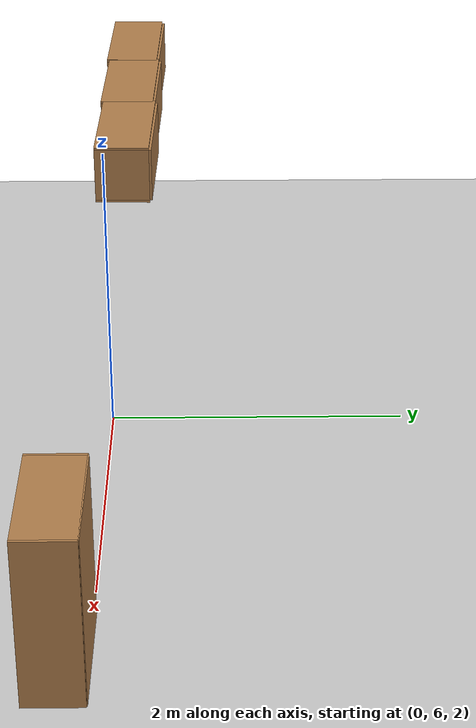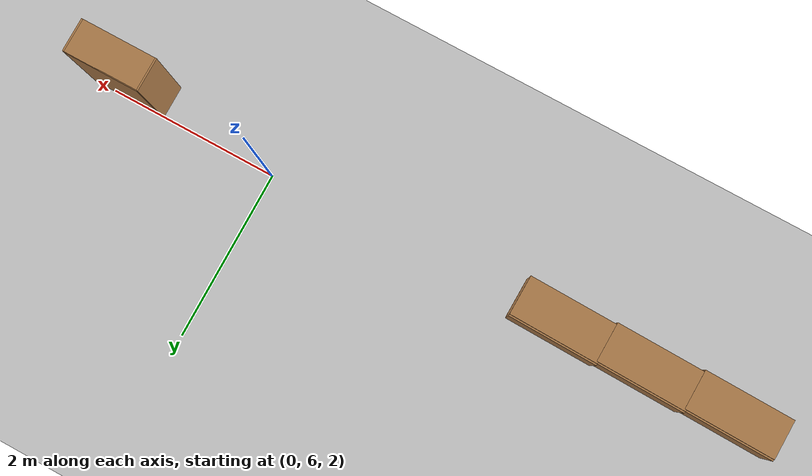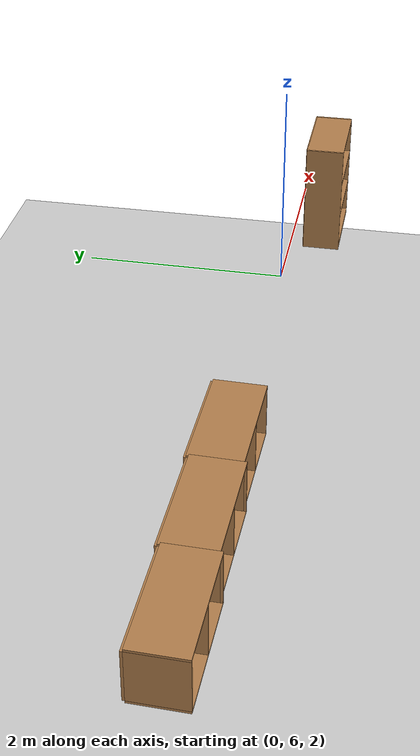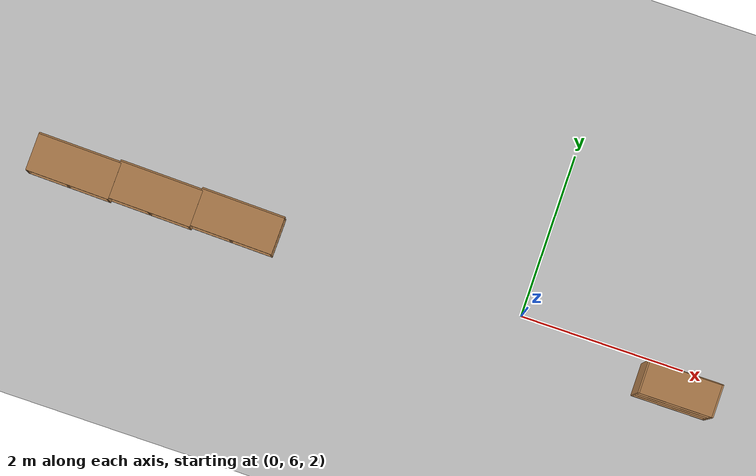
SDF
<sdf version="1.6">
 <world name="default">
  <light name="sun" type="directional">
   <cast_shadows>0</cast_shadows>
   <pose>0 0 10 0 -0 0</pose>
   <diffuse>0.8 0.8 0.8 1</diffuse>
   <specular>0.1 0.1 0.1 1</specular>
   <attenuation>
    <range>1000</range>
    <constant>0.9</constant>
    <linear>0.01</linear>
    <quadratic>0.001</quadratic>
   </attenuation>
   <direction>-0.5 0.5 -1</direction>
  </light>
  <model name="ground_plane">
   <static>1</static>
   <link name="link">
    <collision name="collision">
     <geometry><plane><normal>0 0 1</normal><size>100 100</size></plane></geometry>
     <surface><friction><ode><mu>100</mu><mu2>50</mu2></ode></friction></surface>
    </collision>
    <visual name="visual">
     <cast_shadows>0</cast_shadows>
     <geometry><plane><normal>0 0 1</normal><size>100 100</size></plane></geometry>
     <material>
      <script><uri>file://media/materials/scripts/gazebo.material</uri><name>Gazebo/Grey</name></script>
     </material>
    </visual>
   </link>
  </model>
  <physics name="default_physics" default="0" type="ode">
   <max_step_size>0.001</max_step_size>
   <real_time_factor>1</real_time_factor>
   <real_time_update_rate>1000</real_time_update_rate>
  </physics>
  <scene><ambient>0.4 0.4 0.4 1</ambient><background>0.7 0.7 0.7 1</background><shadows>0</shadows></scene>
  <spherical_coordinates>
   <surface_model>EARTH_WGS84</surface_model>
   <latitude_deg>0</latitude_deg>
   <longitude_deg>0</longitude_deg>
   <elevation>0</elevation>
   <heading_deg>0</heading_deg>
  </spherical_coordinates>
  <gravity>0 0 -9.8</gravity>
  <magnetic_field>6e-06 2.3e-05 -4.2e-05</magnetic_field>
  <atmosphere type="adiabatic"/>
  <model name="cabinet_0_clone_clone">
   <static>1</static>
   <link name="cabinet_bottom_plate">
    <inertial>
     <pose>0 0 -1 0 -0 0</pose>
     <inertia><ixx>2.05</ixx><ixy>0</ixy><ixz>0</ixz><iyy>2.05</iyy><iyz>0</iyz><izz>2.05</izz></inertia>
     <mass>25</mass>
    </inertial>
    <collision name="cabinet_bottom_plate_geom">
     <pose>0 0 0.01 0 -0 0</pose>
     <geometry><box><size>0.45 0.45 0.02</size></box></geometry>
    </collision>
    <visual name="cabinet_bottom_plate_geom_visual">
     <pose>0 0 0.01 0 -0 0</pose>
     <geometry><box><size>0.45 0.45 0.02</size></box></geometry>
     <material>
      <script><uri>file://media/materials/scripts/gazebo.material</uri><name>Gazebo/Wood</name></script>
     </material>
    </visual>
    <collision name="cabinet_bottom_plate_geom_cabinet_back_plate">
     <pose>0.235 0 0.51 0 -0 0</pose>
     <geometry><box><size>0.02 0.45 1.02</size></box></geometry>
    </collision>
    <visual name="cabinet_bottom_plate_geom_cabinet_back_plate_visual">
     <pose>0.235 0 0.51 0 -0 0</pose>
     <geometry><box><size>0.02 0.45 1.02</size></box></geometry>
     <material>
      <script><uri>file://media/materials/scripts/gazebo.material</uri><name>Gazebo/Wood</name></script>
     </material>
    </visual>
    <collision name="cabinet_bottom_plate_geom_cabinet_left_plate">
     <pose>0 0.235 0.51 0 -0 0</pose>
     <geometry><box><size>0.45 0.02 1.02</size></box></geometry>
    </collision>
    <visual name="cabinet_bottom_plate_geom_cabinet_left_plate_visual">
     <pose>0 0.235 0.51 0 -0 0</pose>
     <geometry><box><size>0.45 0.02 1.02</size></box></geometry>
     <material>
      <script><uri>file://media/materials/scripts/gazebo.material</uri><name>Gazebo/Wood</name></script>
     </material>
    </visual>
    <collision name="cabinet_bottom_plate_geom_cabinet_middle_plate">
     <pose>0 0 0.51 0 -0 0</pose>
     <geometry><box><size>0.45 0.45 0.02</size></box></geometry>
    </collision>
    <visual name="cabinet_bottom_plate_geom_cabinet_middle_plate_visual">
     <pose>0 0 0.51 0 -0 0</pose>
     <geometry><box><size>0.45 0.45 0.02</size></box></geometry>
     <material>
      <script><uri>file://media/materials/scripts/gazebo.material</uri><name>Gazebo/Wood</name></script>
     </material>
    </visual>
    <collision name="cabinet_bottom_plate_geom_cabinet_right_plate">
     <pose>0 -0.235 0.51 0 -0 0</pose>
     <geometry><box><size>0.45 0.02 1.02</size></box></geometry>
    </collision>
    <visual name="cabinet_bottom_plate_geom_cabinet_right_plate_visual">
     <pose>0 -0.235 0.51 0 -0 0</pose>
     <geometry><box><size>0.45 0.02 1.02</size></box></geometry>
     <material>
      <script><uri>file://media/materials/scripts/gazebo.material</uri><name>Gazebo/Wood</name></script>
     </material>
    </visual>
    <collision name="cabinet_bottom_plate_geom_cabinet_top_plate">
     <pose>0 0 1.01 0 -0 0</pose>
     <geometry><box><size>0.45 0.45 0.02</size></box></geometry>
    </collision>
    <visual name="cabinet_bottom_plate_geom_cabinet_top_plate_visual">
     <pose>0 0 1.01 0 -0 0</pose>
     <geometry><box><size>0.45 0.45 0.02</size></box></geometry>
     <material>
      <script><uri>file://media/materials/scripts/gazebo.material</uri><name>Gazebo/Wood</name></script>
     </material>
    </visual>
   </link>
   <pose>-4 5.95 2.50001 1.57 0 1.55</pose>
  </model>
  <model name="bookshelf">
   <static>1</static>
   <link name="link">
    <inertial><mass>1</mass></inertial>
    <collision name="back">
     <pose>0 0.005 0.6 0 -0 0</pose>
     <geometry><box><size>0.9 0.01 1.2</size></box></geometry>
    </collision>
    <visual name="visual1">
     <pose>0 0.005 0.6 0 -0 0</pose>
     <geometry><box><size>0.9 0.01 1.2</size></box></geometry>
     <material>
      <script><uri>file://media/materials/scripts/gazebo.material</uri><name>Gazebo/Wood</name></script>
     </material>
    </visual>
    <collision name="left_side">
     <pose>0.45 -0.195 0.6 0 -0 0</pose>
     <geometry><box><size>0.02 0.4 1.2</size></box></geometry>
    </collision>
    <visual name="visual2">
     <pose>0.45 -0.195 0.6 0 -0 0</pose>
     <geometry><box><size>0.02 0.4 1.2</size></box></geometry>
     <material>
      <script><uri>file://media/materials/scripts/gazebo.material</uri><name>Gazebo/Wood</name></script>
     </material>
    </visual>
    <collision name="right_side">
     <pose>-0.45 -0.195 0.6 0 -0 0</pose>
     <geometry><box><size>0.02 0.4 1.2</size></box></geometry>
    </collision>
    <visual name="visual3">
     <pose>-0.45 -0.195 0.6 0 -0 0</pose>
     <geometry><box><size>0.02 0.4 1.2</size></box></geometry>
     <material>
      <script><uri>file://media/materials/scripts/gazebo.material</uri><name>Gazebo/Wood</name></script>
     </material>
    </visual>
    <collision name="bottom">
     <pose>0 -0.195 0.03 0 -0 0</pose>
     <geometry><box><size>0.88 0.4 0.06</size></box></geometry>
    </collision>
    <visual name="visual4">
     <pose>0 -0.195 0.03 0 -0 0</pose>
     <geometry><box><size>0.88 0.4 0.06</size></box></geometry>
     <material>
      <script><uri>file://media/materials/scripts/gazebo.material</uri><name>Gazebo/Wood</name></script>
     </material>
    </visual>
    <collision name="top">
     <pose>0 -0.195 1.19 0 -0 0</pose>
     <geometry><box><size>0.88 0.4 0.02</size></box></geometry>
    </collision>
    <visual name="visual5">
     <pose>0 -0.195 1.19 0 -0 0</pose>
     <geometry><box><size>0.88 0.4 0.02</size></box></geometry>
     <material>
      <script><uri>file://media/materials/scripts/gazebo.material</uri><name>Gazebo/Wood</name></script>
     </material>
    </visual>
    <collision name="low_shelf">
     <pose>0 -0.195 0.43 0 -0 0</pose>
     <geometry><box><size>0.88 0.4 0.02</size></box></geometry>
    </collision>
    <visual name="visual6">
     <pose>0 -0.195 0.43 0 -0 0</pose>
     <geometry><box><size>0.88 0.4 0.02</size></box></geometry>
     <material>
      <script><uri>file://media/materials/scripts/gazebo.material</uri><name>Gazebo/Wood</name></script>
     </material>
    </visual>
    <collision name="high_shelf">
     <pose>0 -0.195 0.8 0 -0 0</pose>
     <geometry><box><size>0.88 0.4 0.02</size></box></geometry>
    </collision>
    <visual name="visual7">
     <pose>0 -0.195 0.8 0 -0 0</pose>
     <geometry><box><size>0.88 0.4 0.02</size></box></geometry>
     <material>
      <script><uri>file://media/materials/scripts/gazebo.material</uri><name>Gazebo/Wood</name></script>
     </material>
    </visual>
   </link>
   <pose>2 5.95 1.5 0 -0 0</pose>
  </model>
  <model name="cabinet_0_clone_clone_clone">
   <static>1</static>
   <link name="cabinet_bottom_plate">
    <inertial>
     <pose>0 0 -1 0 -0 0</pose>
     <inertia><ixx>2.05</ixx><ixy>0</ixy><ixz>0</ixz><iyy>2.05</iyy><iyz>0</iyz><izz>2.05</izz></inertia>
     <mass>25</mass>
    </inertial>
    <collision name="cabinet_bottom_plate_geom">
     <pose>0 0 0.01 0 -0 0</pose>
     <geometry><box><size>0.45 0.45 0.02</size></box></geometry>
    </collision>
    <visual name="cabinet_bottom_plate_geom_visual">
     <pose>0 0 0.01 0 -0 0</pose>
     <geometry><box><size>0.45 0.45 0.02</size></box></geometry>
     <material>
      <script><uri>file://media/materials/scripts/gazebo.material</uri><name>Gazebo/Wood</name></script>
     </material>
    </visual>
    <collision name="cabinet_bottom_plate_geom_cabinet_back_plate">
     <pose>0.235 0 0.51 0 -0 0</pose>
     <geometry><box><size>0.02 0.45 1.02</size></box></geometry>
    </collision>
    <visual name="cabinet_bottom_plate_geom_cabinet_back_plate_visual">
     <pose>0.235 0 0.51 0 -0 0</pose>
     <geometry><box><size>0.02 0.45 1.02</size></box></geometry>
     <material>
      <script><uri>file://media/materials/scripts/gazebo.material</uri><name>Gazebo/Wood</name></script>
     </material>
    </visual>
    <collision name="cabinet_bottom_plate_geom_cabinet_left_plate">
     <pose>0 0.235 0.51 0 -0 0</pose>
     <geometry><box><size>0.45 0.02 1.02</size></box></geometry>
    </collision>
    <visual name="cabinet_bottom_plate_geom_cabinet_left_plate_visual">
     <pose>0 0.235 0.51 0 -0 0</pose>
     <geometry><box><size>0.45 0.02 1.02</size></box></geometry>
     <material>
      <script><uri>file://media/materials/scripts/gazebo.material</uri><name>Gazebo/Wood</name></script>
     </material>
    </visual>
    <collision name="cabinet_bottom_plate_geom_cabinet_middle_plate">
     <pose>0 0 0.51 0 -0 0</pose>
     <geometry><box><size>0.45 0.45 0.02</size></box></geometry>
    </collision>
    <visual name="cabinet_bottom_plate_geom_cabinet_middle_plate_visual">
     <pose>0 0 0.51 0 -0 0</pose>
     <geometry><box><size>0.45 0.45 0.02</size></box></geometry>
     <material>
      <script><uri>file://media/materials/scripts/gazebo.material</uri><name>Gazebo/Wood</name></script>
     </material>
    </visual>
    <collision name="cabinet_bottom_plate_geom_cabinet_right_plate">
     <pose>0 -0.235 0.51 0 -0 0</pose>
     <geometry><box><size>0.45 0.02 1.02</size></box></geometry>
    </collision>
    <visual name="cabinet_bottom_plate_geom_cabinet_right_plate_visual">
     <pose>0 -0.235 0.51 0 -0 0</pose>
     <geometry><box><size>0.45 0.02 1.02</size></box></geometry>
     <material>
      <script><uri>file://media/materials/scripts/gazebo.material</uri><name>Gazebo/Wood</name></script>
     </material>
    </visual>
    <collision name="cabinet_bottom_plate_geom_cabinet_top_plate">
     <pose>0 0 1.01 0 -0 0</pose>
     <geometry><box><size>0.45 0.45 0.02</size></box></geometry>
    </collision>
    <visual name="cabinet_bottom_plate_geom_cabinet_top_plate_visual">
     <pose>0 0 1.01 0 -0 0</pose>
     <geometry><box><size>0.45 0.45 0.02</size></box></geometry>
     <material>
      <script><uri>file://media/materials/scripts/gazebo.material</uri><name>Gazebo/Wood</name></script>
     </material>
    </visual>
   </link>
   <pose>-5 5.95 2.50001 1.57 0 1.55</pose>
  </model>
  <model name="cabinet_0_clone_clone_clone_0">
   <static>1</static>
   <link name="cabinet_bottom_plate">
    <inertial>
     <pose>0 0 -1 0 -0 0</pose>
     <inertia><ixx>2.05</ixx><ixy>0</ixy><ixz>0</ixz><iyy>2.05</iyy><iyz>0</iyz><izz>2.05</izz></inertia>
     <mass>25</mass>
    </inertial>
    <collision name="cabinet_bottom_plate_geom">
     <pose>0 0 0.01 0 -0 0</pose>
     <geometry><box><size>0.45 0.45 0.02</size></box></geometry>
    </collision>
    <visual name="cabinet_bottom_plate_geom_visual">
     <pose>0 0 0.01 0 -0 0</pose>
     <geometry><box><size>0.45 0.45 0.02</size></box></geometry>
     <material>
      <script><uri>file://media/materials/scripts/gazebo.material</uri><name>Gazebo/Wood</name></script>
     </material>
    </visual>
    <collision name="cabinet_bottom_plate_geom_cabinet_back_plate">
     <pose>0.235 0 0.51 0 -0 0</pose>
     <geometry><box><size>0.02 0.45 1.02</size></box></geometry>
    </collision>
    <visual name="cabinet_bottom_plate_geom_cabinet_back_plate_visual">
     <pose>0.235 0 0.51 0 -0 0</pose>
     <geometry><box><size>0.02 0.45 1.02</size></box></geometry>
     <material>
      <script><uri>file://media/materials/scripts/gazebo.material</uri><name>Gazebo/Wood</name></script>
     </material>
    </visual>
    <collision name="cabinet_bottom_plate_geom_cabinet_left_plate">
     <pose>0 0.235 0.51 0 -0 0</pose>
     <geometry><box><size>0.45 0.02 1.02</size></box></geometry>
    </collision>
    <visual name="cabinet_bottom_plate_geom_cabinet_left_plate_visual">
     <pose>0 0.235 0.51 0 -0 0</pose>
     <geometry><box><size>0.45 0.02 1.02</size></box></geometry>
     <material>
      <script><uri>file://media/materials/scripts/gazebo.material</uri><name>Gazebo/Wood</name></script>
     </material>
    </visual>
    <collision name="cabinet_bottom_plate_geom_cabinet_middle_plate">
     <pose>0 0 0.51 0 -0 0</pose>
     <geometry><box><size>0.45 0.45 0.02</size></box></geometry>
    </collision>
    <visual name="cabinet_bottom_plate_geom_cabinet_middle_plate_visual">
     <pose>0 0 0.51 0 -0 0</pose>
     <geometry><box><size>0.45 0.45 0.02</size></box></geometry>
     <material>
      <script><uri>file://media/materials/scripts/gazebo.material</uri><name>Gazebo/Wood</name></script>
     </material>
    </visual>
    <collision name="cabinet_bottom_plate_geom_cabinet_right_plate">
     <pose>0 -0.235 0.51 0 -0 0</pose>
     <geometry><box><size>0.45 0.02 1.02</size></box></geometry>
    </collision>
    <visual name="cabinet_bottom_plate_geom_cabinet_right_plate_visual">
     <pose>0 -0.235 0.51 0 -0 0</pose>
     <geometry><box><size>0.45 0.02 1.02</size></box></geometry>
     <material>
      <script><uri>file://media/materials/scripts/gazebo.material</uri><name>Gazebo/Wood</name></script>
     </material>
    </visual>
    <collision name="cabinet_bottom_plate_geom_cabinet_top_plate">
     <pose>0 0 1.01 0 -0 0</pose>
     <geometry><box><size>0.45 0.45 0.02</size></box></geometry>
    </collision>
    <visual name="cabinet_bottom_plate_geom_cabinet_top_plate_visual">
     <pose>0 0 1.01 0 -0 0</pose>
     <geometry><box><size>0.45 0.45 0.02</size></box></geometry>
     <material>
      <script><uri>file://media/materials/scripts/gazebo.material</uri><name>Gazebo/Wood</name></script>
     </material>
    </visual>
   </link>
   <pose>-6 5.95 2.50001 1.57 0 1.55</pose>
  </model>
 </world>
</sdf>
